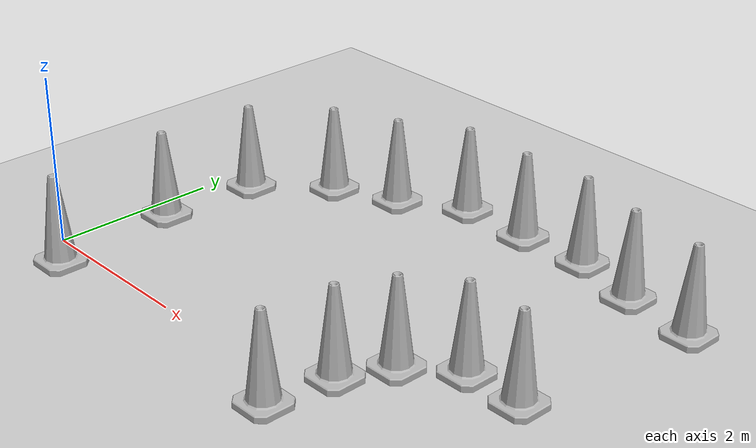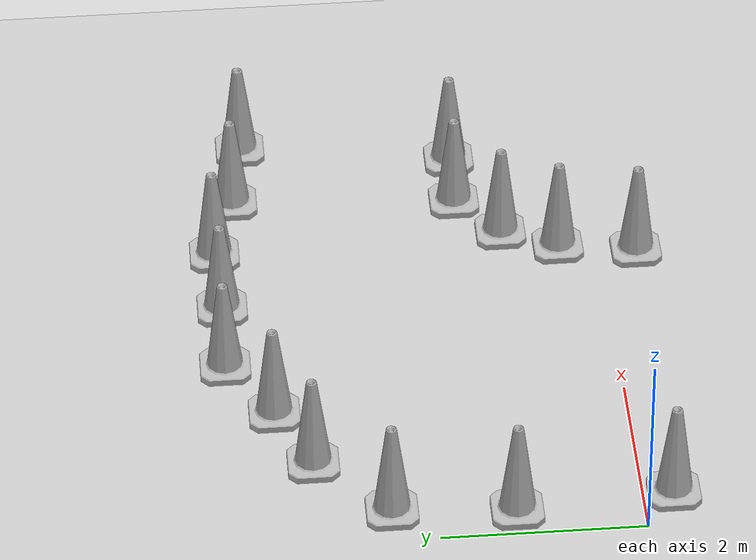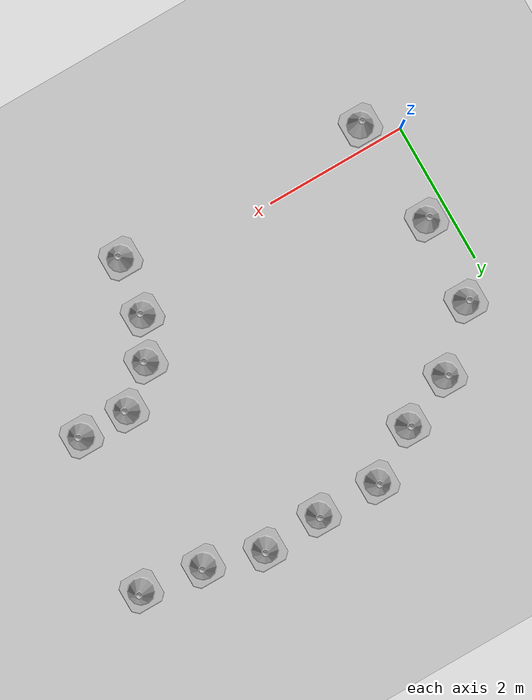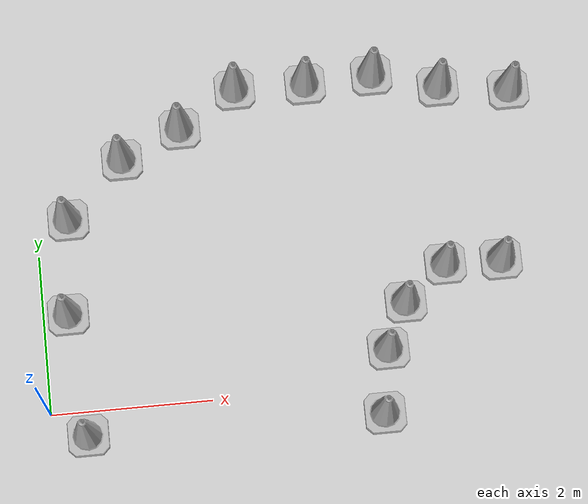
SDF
<sdf version="1.7">
 <world name="default">
  <light name="sun" type="directional">
   <pose>0 0 10 0 -0 0</pose>
   <diffuse>0.8 0.8 0.8 1</diffuse>
   <specular>0.2 0.2 0.2 1</specular>
   <attenuation>
    <range>1000</range>
    <constant>0.9</constant>
    <linear>0.01</linear>
    <quadratic>0.001</quadratic>
   </attenuation>
   <direction>-0.5 0.1 -0.9</direction>
   <spot><inner_angle>0</inner_angle><outer_angle>0</outer_angle><falloff>0</falloff></spot>
  </light>
  <model name="ground_plane">
   <static>1</static>
   <link name="link">
    <collision name="collision">
     <geometry><plane><normal>0 0 1</normal><size>100 100</size></plane></geometry>
     <surface>
      <contact><collide_bitmask>65535</collide_bitmask></contact>
      <friction><ode><mu>100</mu><mu2>50</mu2></ode></friction>
     </surface>
    </collision>
    <visual name="visual">
     <cast_shadows>0</cast_shadows>
     <geometry><plane><normal>0 0 1</normal><size>100 100</size></plane></geometry>
     <material>
      <script><uri>file://media/materials/scripts/gazebo.material</uri><name>Gazebo/Grey</name></script>
     </material>
    </visual>
   </link>
  </model>
  <gravity>0 0 -9.8</gravity>
  <magnetic_field>6e-06 2.3e-05 -4.2e-05</magnetic_field>
  <atmosphere type="adiabatic"/>
  <physics type="ode">
   <max_step_size>0.001</max_step_size>
   <real_time_factor>1</real_time_factor>
   <real_time_update_rate>1000</real_time_update_rate>
  </physics>
  <scene><ambient>0.4 0.4 0.4 1</ambient><background>0.7 0.7 0.7 1</background><shadows>1</shadows></scene>
  <audio><device>default</device></audio>
  <spherical_coordinates>
   <surface_model>EARTH_WGS84</surface_model>
   <latitude_deg>0</latitude_deg>
   <longitude_deg>0</longitude_deg>
   <elevation>0</elevation>
   <heading_deg>0</heading_deg>
  </spherical_coordinates>
  <model name="Construction Cone">
   <link name="link">
    <collision name="collision">
     <geometry>
      <mesh><scale>10 10 10</scale><uri>model://construction_cone/meshes/construction_cone.dae</uri></mesh>
     </geometry>
    </collision>
    <visual name="visual">
     <geometry>
      <mesh><scale>10 10 10</scale><uri>model://construction_cone/meshes/construction_cone.dae</uri></mesh>
     </geometry>
    </visual>
    <inertial>
     <inertia><ixx>1</ixx><ixy>0</ixy><ixz>0</ixz><iyy>1</iyy><iyz>0</iyz><izz>1</izz></inertia>
     <mass>1</mass>
    </inertial>
   </link>
   <pose>0.437814 -0.301301 -0 0 -0 0</pose>
  </model>
  <model name="Construction Cone_clone">
   <link name="link">
    <collision name="collision">
     <geometry>
      <mesh><scale>10 10 10</scale><uri>model://construction_cone/meshes/construction_cone.dae</uri></mesh>
     </geometry>
    </collision>
    <visual name="visual">
     <geometry>
      <mesh><scale>10 10 10</scale><uri>model://construction_cone/meshes/construction_cone.dae</uri></mesh>
     </geometry>
    </visual>
    <inertial>
     <inertia><ixx>1</ixx><ixy>0</ixy><ixz>0</ixz><iyy>1</iyy><iyz>0</iyz><izz>1</izz></inertia>
     <mass>1</mass>
    </inertial>
   </link>
   <pose>0.306693 1.23405 -0 -0 -0 -0</pose>
  </model>
  <model name="Construction Cone_clone_0">
   <link name="link">
    <collision name="collision">
     <geometry>
      <mesh><scale>10 10 10</scale><uri>model://construction_cone/meshes/construction_cone.dae</uri></mesh>
     </geometry>
    </collision>
    <visual name="visual">
     <geometry>
      <mesh><scale>10 10 10</scale><uri>model://construction_cone/meshes/construction_cone.dae</uri></mesh>
     </geometry>
    </visual>
    <inertial>
     <inertia><ixx>1</ixx><ixy>0</ixy><ixz>0</ixz><iyy>1</iyy><iyz>0</iyz><izz>1</izz></inertia>
     <mass>1</mass>
    </inertial>
   </link>
   <pose>0.396951 2.43747 -0 0 -0 0</pose>
  </model>
  <model name="Construction Cone_clone_1">
   <link name="link">
    <collision name="collision">
     <geometry>
      <mesh><scale>10 10 10</scale><uri>model://construction_cone/meshes/construction_cone.dae</uri></mesh>
     </geometry>
    </collision>
    <visual name="visual">
     <geometry>
      <mesh><scale>10 10 10</scale><uri>model://construction_cone/meshes/construction_cone.dae</uri></mesh>
     </geometry>
    </visual>
    <inertial>
     <inertia><ixx>1</ixx><ixy>0</ixy><ixz>0</ixz><iyy>1</iyy><iyz>0</iyz><izz>1</izz></inertia>
     <mass>1</mass>
    </inertial>
   </link>
   <pose>1.13012 3.15015 -0 0 -1e-06 0</pose>
  </model>
  <model name="Construction Cone_clone_2">
   <link name="link">
    <collision name="collision">
     <geometry>
      <mesh><scale>10 10 10</scale><uri>model://construction_cone/meshes/construction_cone.dae</uri></mesh>
     </geometry>
    </collision>
    <visual name="visual">
     <geometry>
      <mesh><scale>10 10 10</scale><uri>model://construction_cone/meshes/construction_cone.dae</uri></mesh>
     </geometry>
    </visual>
    <inertial>
     <inertia><ixx>1</ixx><ixy>0</ixy><ixz>0</ixz><iyy>1</iyy><iyz>0</iyz><izz>1</izz></inertia>
     <mass>1</mass>
    </inertial>
   </link>
   <pose>1.89045 3.48586 -0 1e-06 -0 0</pose>
  </model>
  <model name="Construction Cone_clone_3">
   <link name="link">
    <collision name="collision">
     <geometry>
      <mesh><scale>10 10 10</scale><uri>model://construction_cone/meshes/construction_cone.dae</uri></mesh>
     </geometry>
    </collision>
    <visual name="visual">
     <geometry>
      <mesh><scale>10 10 10</scale><uri>model://construction_cone/meshes/construction_cone.dae</uri></mesh>
     </geometry>
    </visual>
    <inertial>
     <inertia><ixx>1</ixx><ixy>0</ixy><ixz>0</ixz><iyy>1</iyy><iyz>0</iyz><izz>1</izz></inertia>
     <mass>1</mass>
    </inertial>
   </link>
   <pose>2.62676 3.93439 -0 1e-06 -0 0</pose>
  </model>
  <model name="Construction Cone_clone_4">
   <link name="link">
    <collision name="collision">
     <geometry>
      <mesh><scale>10 10 10</scale><uri>model://construction_cone/meshes/construction_cone.dae</uri></mesh>
     </geometry>
    </collision>
    <visual name="visual">
     <geometry>
      <mesh><scale>10 10 10</scale><uri>model://construction_cone/meshes/construction_cone.dae</uri></mesh>
     </geometry>
    </visual>
    <inertial>
     <inertia><ixx>1</ixx><ixy>0</ixy><ixz>0</ixz><iyy>1</iyy><iyz>0</iyz><izz>1</izz></inertia>
     <mass>1</mass>
    </inertial>
   </link>
   <pose>3.52261 3.92114 -0 -0 -0 -0</pose>
  </model>
  <model name="Construction Cone_clone_5">
   <link name="link">
    <collision name="collision">
     <geometry>
      <mesh><scale>10 10 10</scale><uri>model://construction_cone/meshes/construction_cone.dae</uri></mesh>
     </geometry>
    </collision>
    <visual name="visual">
     <geometry>
      <mesh><scale>10 10 10</scale><uri>model://construction_cone/meshes/construction_cone.dae</uri></mesh>
     </geometry>
    </visual>
    <inertial>
     <inertia><ixx>1</ixx><ixy>0</ixy><ixz>0</ixz><iyy>1</iyy><iyz>0</iyz><izz>1</izz></inertia>
     <mass>1</mass>
    </inertial>
   </link>
   <pose>4.0973 -0.366391 -0 0 -0 0</pose>
  </model>
  <model name="Construction Cone_clone_6">
   <link name="link">
    <collision name="collision">
     <geometry>
      <mesh><scale>10 10 10</scale><uri>model://construction_cone/meshes/construction_cone.dae</uri></mesh>
     </geometry>
    </collision>
    <visual name="visual">
     <geometry>
      <mesh><scale>10 10 10</scale><uri>model://construction_cone/meshes/construction_cone.dae</uri></mesh>
     </geometry>
    </visual>
    <inertial>
     <inertia><ixx>1</ixx><ixy>0</ixy><ixz>0</ixz><iyy>1</iyy><iyz>0</iyz><izz>1</izz></inertia>
     <mass>1</mass>
    </inertial>
   </link>
   <pose>4.22033 0.428289 -0 0 -0 0.005762</pose>
  </model>
  <model name="Construction Cone_clone_7">
   <link name="link">
    <collision name="collision">
     <geometry>
      <mesh><scale>10 10 10</scale><uri>model://construction_cone/meshes/construction_cone.dae</uri></mesh>
     </geometry>
    </collision>
    <visual name="visual">
     <geometry>
      <mesh><scale>10 10 10</scale><uri>model://construction_cone/meshes/construction_cone.dae</uri></mesh>
     </geometry>
    </visual>
    <inertial>
     <inertia><ixx>1</ixx><ixy>0</ixy><ixz>0</ixz><iyy>1</iyy><iyz>0</iyz><izz>1</izz></inertia>
     <mass>1</mass>
    </inertial>
   </link>
   <pose>4.4966 0.996152 -0 0 -1e-06 0</pose>
  </model>
  <model name="Construction Cone_clone_8">
   <link name="link">
    <collision name="collision">
     <geometry>
      <mesh><scale>10 10 10</scale><uri>model://construction_cone/meshes/construction_cone.dae</uri></mesh>
     </geometry>
    </collision>
    <visual name="visual">
     <geometry>
      <mesh><scale>10 10 10</scale><uri>model://construction_cone/meshes/construction_cone.dae</uri></mesh>
     </geometry>
    </visual>
    <inertial>
     <inertia><ixx>1</ixx><ixy>0</ixy><ixz>0</ixz><iyy>1</iyy><iyz>0</iyz><izz>1</izz></inertia>
     <mass>1</mass>
    </inertial>
   </link>
   <pose>5.03878 1.43226 -0 0 -0 0</pose>
  </model>
  <model name="Construction Cone_clone_9">
   <link name="link">
    <collision name="collision">
     <geometry>
      <mesh><scale>10 10 10</scale><uri>model://construction_cone/meshes/construction_cone.dae</uri></mesh>
     </geometry>
    </collision>
    <visual name="visual">
     <geometry>
      <mesh><scale>10 10 10</scale><uri>model://construction_cone/meshes/construction_cone.dae</uri></mesh>
     </geometry>
    </visual>
    <inertial>
     <inertia><ixx>1</ixx><ixy>0</ixy><ixz>0</ixz><iyy>1</iyy><iyz>0</iyz><izz>1</izz></inertia>
     <mass>1</mass>
    </inertial>
   </link>
   <pose>5.73886 1.42564 -0 0 -0 0</pose>
  </model>
  <model name="Construction Cone_clone_10">
   <link name="link">
    <collision name="collision">
     <geometry>
      <mesh><scale>10 10 10</scale><uri>model://construction_cone/meshes/construction_cone.dae</uri></mesh>
     </geometry>
    </collision>
    <visual name="visual">
     <geometry>
      <mesh><scale>10 10 10</scale><uri>model://construction_cone/meshes/construction_cone.dae</uri></mesh>
     </geometry>
    </visual>
    <inertial>
     <inertia><ixx>1</ixx><ixy>0</ixy><ixz>0</ixz><iyy>1</iyy><iyz>0</iyz><izz>1</izz></inertia>
     <mass>1</mass>
    </inertial>
   </link>
   <pose>4.37319 3.96013 -0 0 -0 0</pose>
  </model>
  <model name="Construction Cone_clone_11">
   <link name="link">
    <collision name="collision">
     <geometry>
      <mesh><scale>10 10 10</scale><uri>model://construction_cone/meshes/construction_cone.dae</uri></mesh>
     </geometry>
    </collision>
    <visual name="visual">
     <geometry>
      <mesh><scale>10 10 10</scale><uri>model://construction_cone/meshes/construction_cone.dae</uri></mesh>
     </geometry>
    </visual>
    <inertial>
     <inertia><ixx>1</ixx><ixy>0</ixy><ixz>0</ixz><iyy>1</iyy><iyz>0</iyz><izz>1</izz></inertia>
     <mass>1</mass>
    </inertial>
   </link>
   <pose>5.19798 3.73481 -0 0 -0 0</pose>
  </model>
  <model name="Construction Cone_clone_12">
   <link name="link">
    <collision name="collision">
     <geometry>
      <mesh><scale>10 10 10</scale><uri>model://construction_cone/meshes/construction_cone.dae</uri></mesh>
     </geometry>
    </collision>
    <visual name="visual">
     <geometry>
      <mesh><scale>10 10 10</scale><uri>model://construction_cone/meshes/construction_cone.dae</uri></mesh>
     </geometry>
    </visual>
    <inertial>
     <inertia><ixx>1</ixx><ixy>0</ixy><ixz>0</ixz><iyy>1</iyy><iyz>0</iyz><izz>1</izz></inertia>
     <mass>1</mass>
    </inertial>
   </link>
   <pose>6.08179 3.61133 0 -0 -0 -0</pose>
  </model>
 </world>
</sdf>
